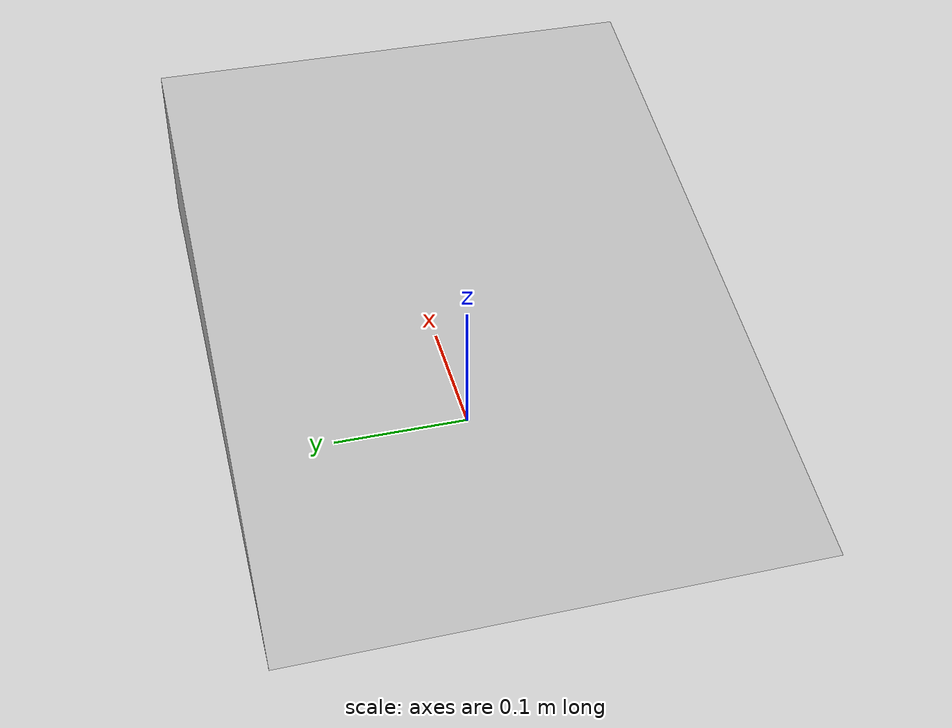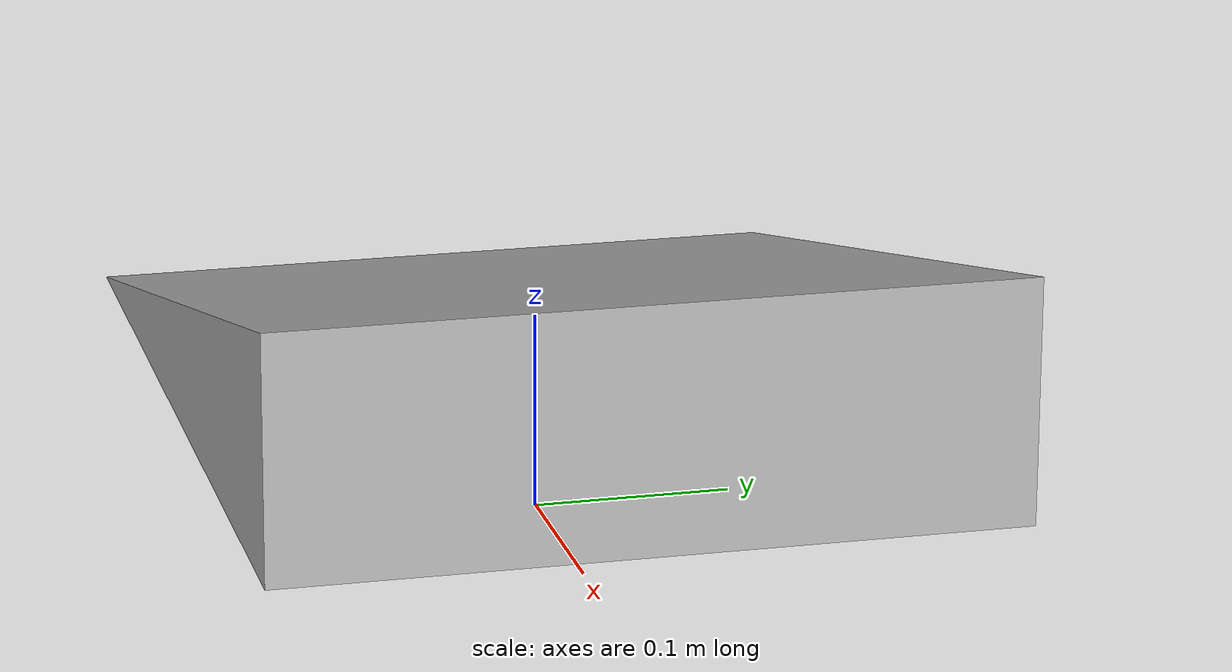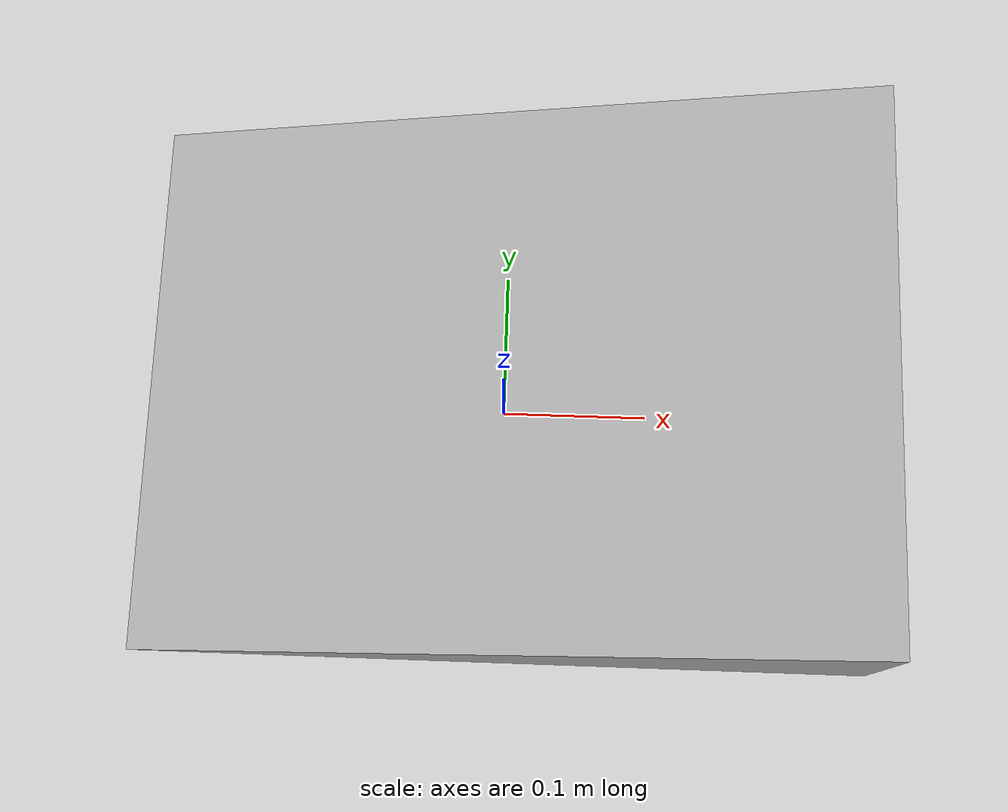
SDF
<?xml version="1.0" ?>
<sdf version="1.5">
  <model name="rampa">
    <link name="link">
      <collision name="collision">
        <geometry>
          <mesh>
            <scale>0.12 0.12 0.12</scale>
            <uri>model://rampa/meshes/rampa.stl</uri>
          </mesh>
        </geometry>
      </collision>
      <visual name="visual">
        <geometry>
          <mesh>
            <scale>0.12 0.12 0.12</scale>
            <uri>model://rampa/meshes/rampa.dae</uri>
          </mesh>
        </geometry>
      </visual>
    </link>
  </model>
</sdf>
